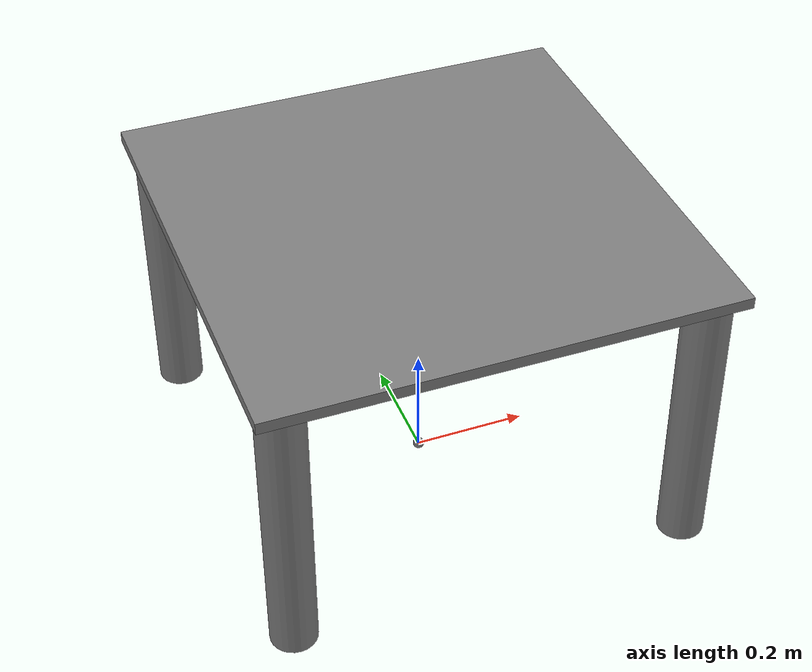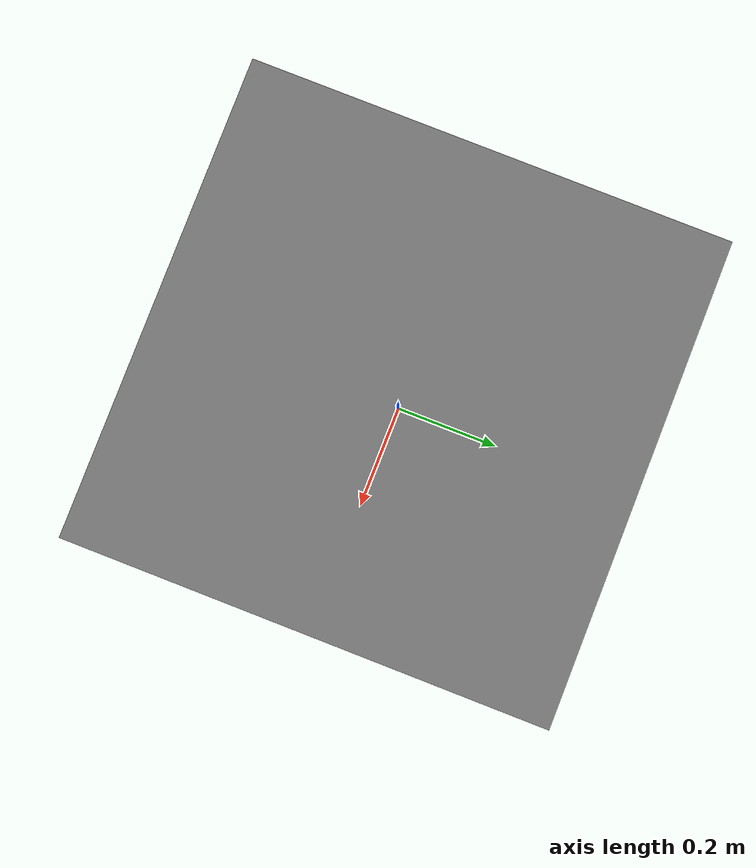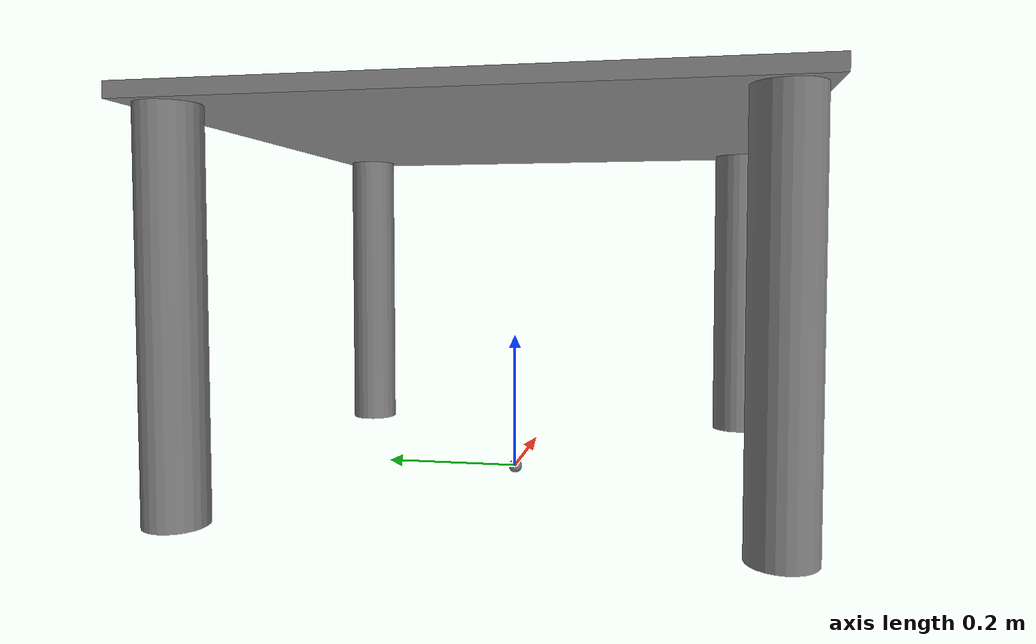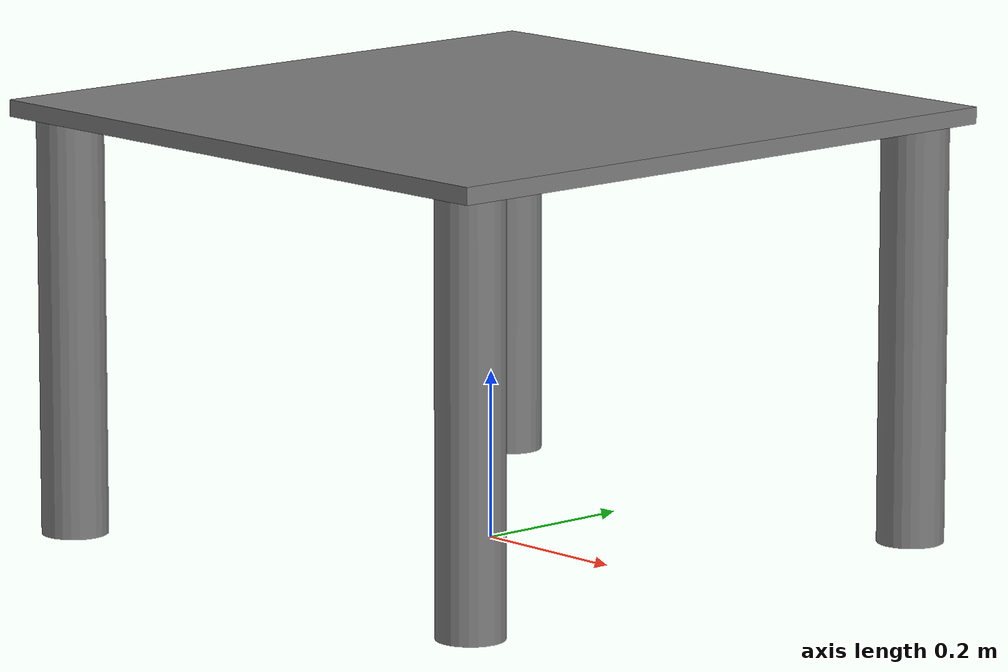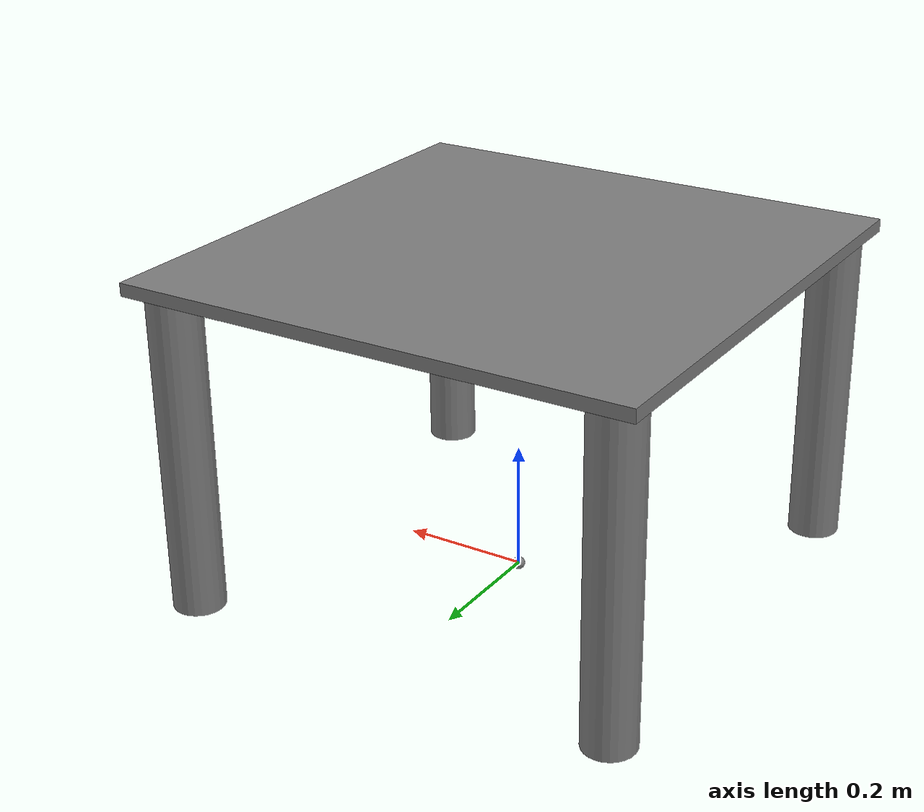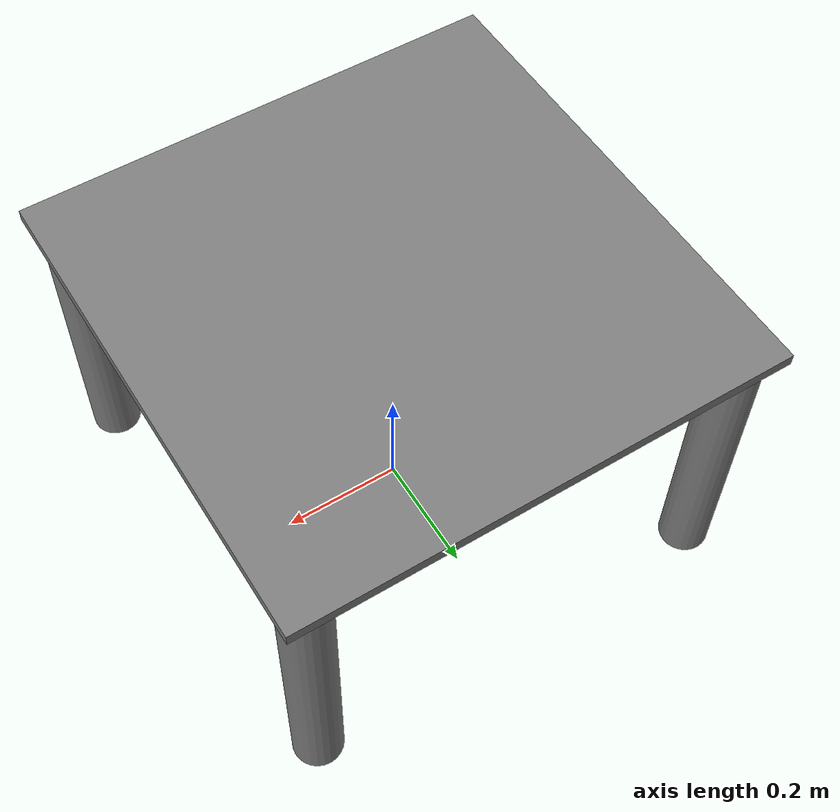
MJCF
<mujoco model="table_short">
<!-- Copyright (c) 2025 Boston Dynamics AI Institute LLC. All rights reserved. -->
  <worldbody>
    <body name="table_short" pos="0 0 0">
      <joint name="table_short_joint" type="free" limited="false"/>
      <inertial pos="0 0 0" mass="10" diaginertia="0.681 0.681 0.951"/>

      <geom name="tabletop" type="box" size="0.4 0.4 0.01" pos="0 0 0.51"/>
      <geom name="leg1" type="cylinder" size="0.04 0.25" pos="0.35 0.35 0.25"/>
      <geom name="leg2" type="cylinder" size="0.04 0.25" pos="-0.35 0.35 0.25"/>
      <geom name="leg3" type="cylinder" size="0.04 0.25" pos="0.35 -0.35 0.25"/>
      <geom name="leg4" type="cylinder" size="0.04 0.25" pos="-0.35 -0.35 0.25"/>

      <site name="site_object" pos="0 0 0" size="0.01"/>
    </body>
  </worldbody>
</mujoco>
